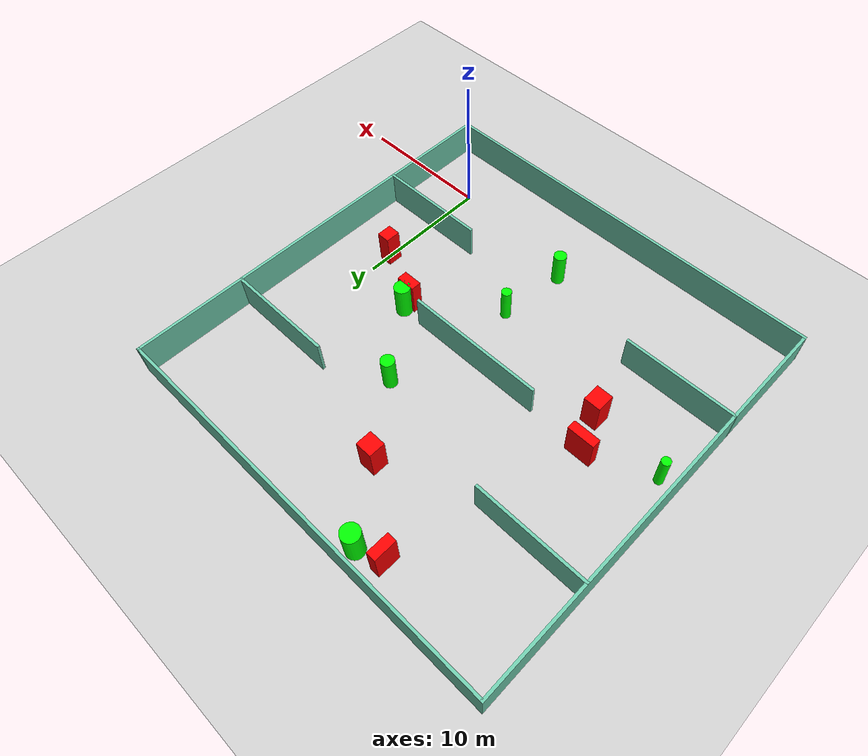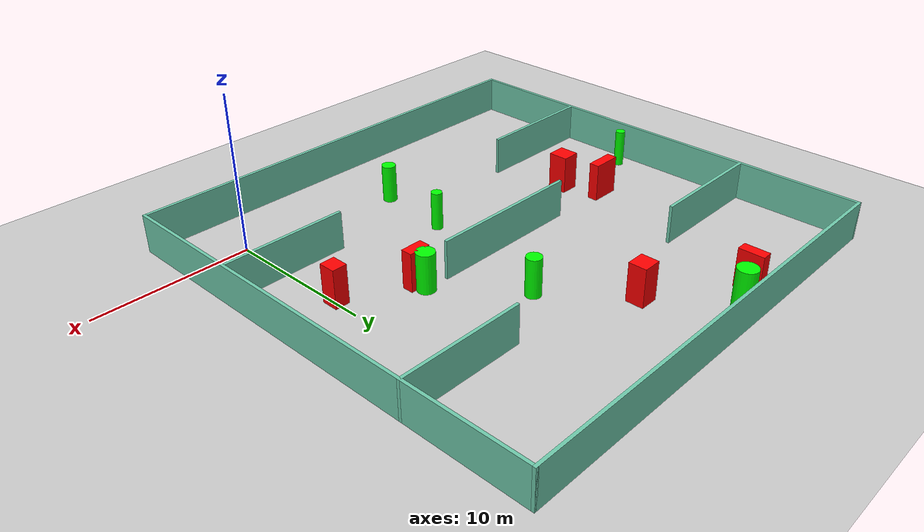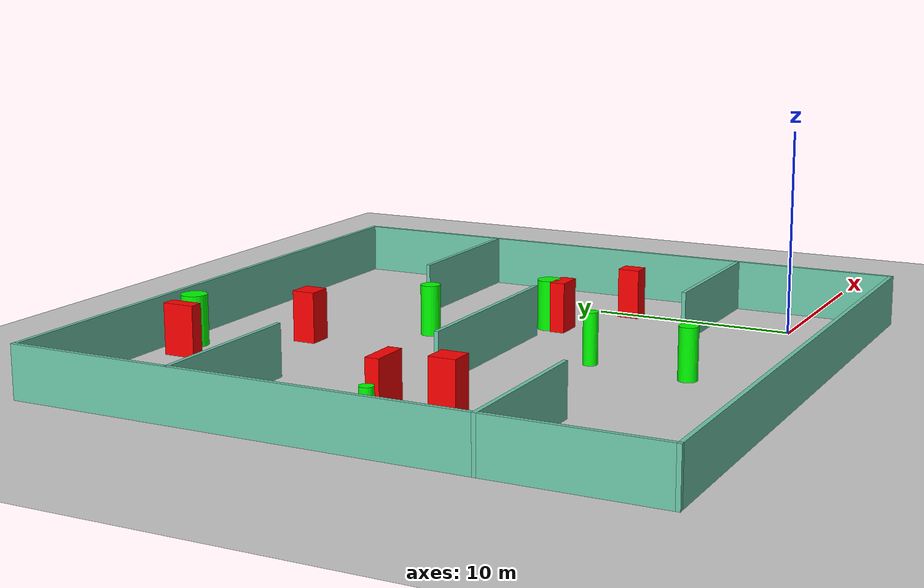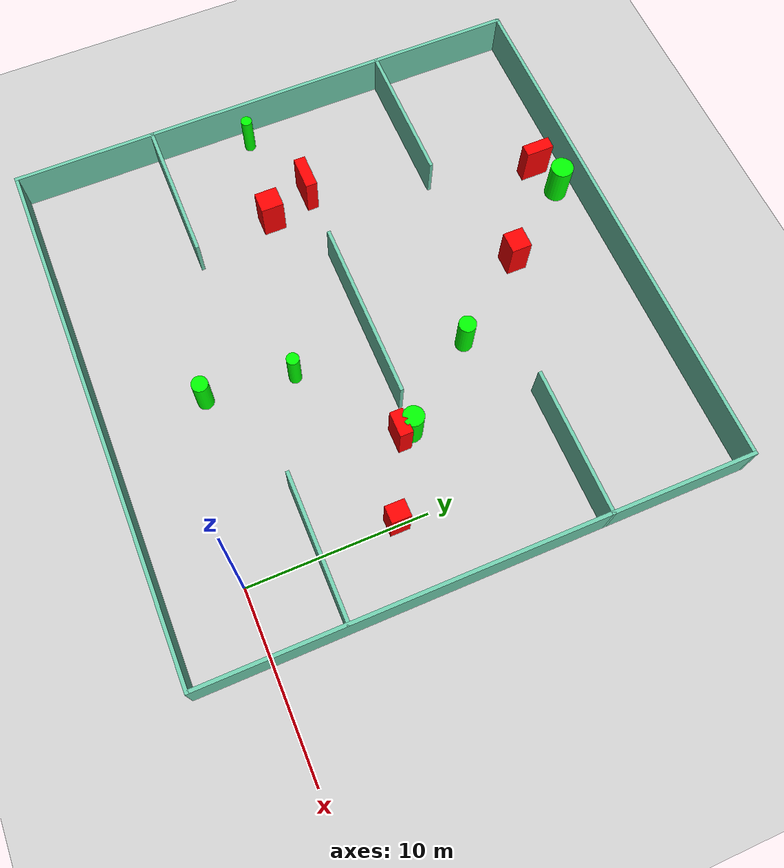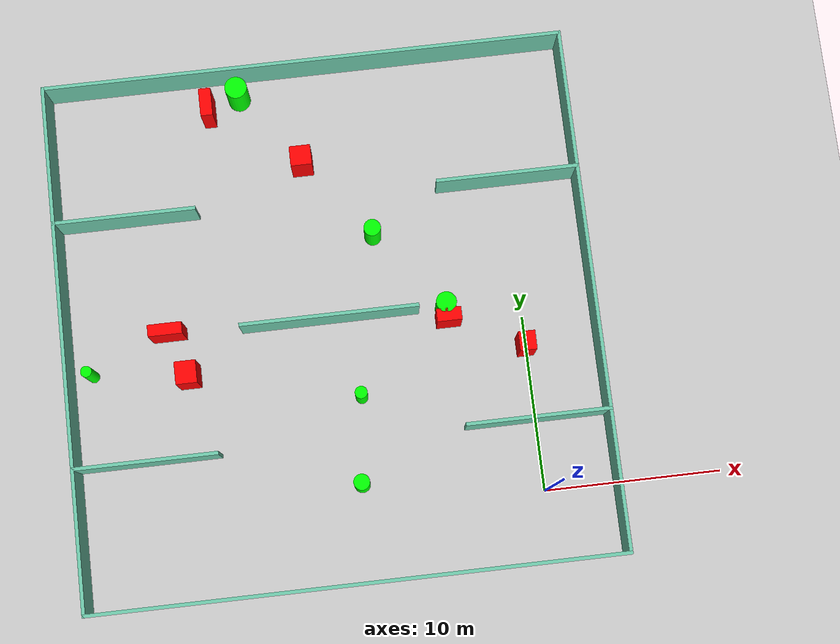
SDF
<sdf version="1.7">
 <world name="default">
  <light name="sun" type="directional">
   <pose>0 0 10 0 -0 0</pose>
   <diffuse>0.8 0.8 0.8 1</diffuse>
   <specular>0.2 0.2 0.2 1</specular>
   <attenuation>
    <range>1000</range>
    <constant>0.9</constant>
    <linear>0.01</linear>
    <quadratic>0.001</quadratic>
   </attenuation>
   <direction>-0.5 0.1 -0.9</direction>
   <spot><inner_angle>0</inner_angle><outer_angle>0</outer_angle><falloff>0</falloff></spot>
  </light>
  <model name="ground_plane">
   <static>1</static>
   <link name="link">
    <collision name="collision">
     <geometry><plane><normal>0 0 1</normal><size>100 100</size></plane></geometry>
     <surface>
      <contact><collide_bitmask>65535</collide_bitmask></contact>
      <friction><ode><mu>100</mu><mu2>50</mu2></ode></friction>
     </surface>
    </collision>
    <visual name="visual">
     <cast_shadows>0</cast_shadows>
     <geometry><plane><normal>0 0 1</normal><size>100 100</size></plane></geometry>
     <material>
      <script><uri>file://media/materials/scripts/gazebo.material</uri><name>Gazebo/Grey</name></script>
     </material>
    </visual>
   </link>
  </model>
  <gravity>0 0 -9.8</gravity>
  <magnetic_field>6e-06 2.3e-05 -4.2e-05</magnetic_field>
  <atmosphere type="adiabatic"/>
  <physics type="ode">
   <max_step_size>0.001</max_step_size>
   <real_time_factor>1</real_time_factor>
   <real_time_update_rate>1000</real_time_update_rate>
  </physics>
  <scene><ambient>0.4 0.4 0.4 1</ambient><background>0.7 0.7 0.7 1</background><shadows>1</shadows></scene>
  <spherical_coordinates>
   <surface_model>EARTH_WGS84</surface_model>
   <latitude_deg>0</latitude_deg>
   <longitude_deg>0</longitude_deg>
   <elevation>0</elevation>
   <heading_deg>0</heading_deg>
  </spherical_coordinates>
  <model name="my_base_walls">
   <link name="Wall_10">
    <collision name="Wall_10_Collision">
     <geometry><box><size>8.2 0.2 2.5</size></box></geometry>
     <pose>0 0 1.25 0 -0 0</pose>
    </collision>
    <visual name="Wall_10_Visual">
     <pose>0 0 1.25 0 -0 0</pose>
     <geometry><box><size>8.2 0.2 2.5</size></box></geometry>
     <material>
      <script><uri>file://media/materials/scripts/gazebo.material</uri><name>Gazebo/Grey</name></script>
      <ambient>0.435294 0.796078 0.67451 1</ambient>
     </material>
     <meta><layer>0</layer></meta>
    </visual>
    <pose>-11 -7 0 0 -0 0</pose>
   </link>
   <link name="Wall_12">
    <collision name="Wall_12_Collision">
     <geometry><box><size>8.2 0.2 2.5</size></box></geometry>
     <pose>0 0 1.25 0 -0 0</pose>
    </collision>
    <visual name="Wall_12_Visual">
     <pose>0 0 1.25 0 -0 0</pose>
     <geometry><box><size>8.2 0.2 2.5</size></box></geometry>
     <material>
      <script><uri>file://media/materials/scripts/gazebo.material</uri><name>Gazebo/Grey</name></script>
      <ambient>0.435294 0.796078 0.67451 1</ambient>
     </material>
     <meta><layer>0</layer></meta>
    </visual>
    <pose>-11 7 0 0 -0 0</pose>
   </link>
   <link name="Wall_14">
    <collision name="Wall_14_Collision">
     <geometry><box><size>8.2 0.2 2.5</size></box></geometry>
     <pose>0 0 1.25 0 -0 0</pose>
    </collision>
    <visual name="Wall_14_Visual">
     <pose>0 0 1.25 0 -0 0</pose>
     <geometry><box><size>8.2 0.2 2.5</size></box></geometry>
     <material>
      <script><uri>file://media/materials/scripts/gazebo.material</uri><name>Gazebo/Grey</name></script>
      <ambient>0.435294 0.796078 0.67451 1</ambient>
     </material>
     <meta><layer>0</layer></meta>
    </visual>
    <pose>11 7 0 0 -0 3.14159</pose>
   </link>
   <link name="Wall_16">
    <collision name="Wall_16_Collision">
     <geometry><box><size>10.2 0.2 2.5</size></box></geometry>
     <pose>0 0 1.25 0 -0 0</pose>
    </collision>
    <visual name="Wall_16_Visual">
     <pose>0 0 1.25 0 -0 0</pose>
     <geometry><box><size>10.2 0.2 2.5</size></box></geometry>
     <material>
      <script><uri>file://media/materials/scripts/gazebo.material</uri><name>Gazebo/Grey</name></script>
      <ambient>0.435294 0.796078 0.67451 1</ambient>
     </material>
     <meta><layer>0</layer></meta>
    </visual>
    <pose>0 0 0 0 -0 3.14159</pose>
   </link>
   <link name="Wall_2">
    <collision name="Wall_2_Collision">
     <geometry><box><size>30.2 0.2 2.5</size></box></geometry>
     <pose>0 0 1.25 0 -0 0</pose>
    </collision>
    <visual name="Wall_2_Visual">
     <pose>0 0 1.25 0 -0 0</pose>
     <geometry><box><size>30.2 0.2 2.5</size></box></geometry>
     <material>
      <script><uri>file://media/materials/scripts/gazebo.material</uri><name>Gazebo/Grey</name></script>
      <ambient>0.435294 0.796078 0.67451 1</ambient>
     </material>
     <meta><layer>0</layer></meta>
    </visual>
    <pose>0 -15 0 0 -0 3.14159</pose>
   </link>
   <link name="Wall_3">
    <collision name="Wall_3_Collision">
     <geometry><box><size>30.2 0.2 2.5</size></box></geometry>
     <pose>0 0 1.25 0 -0 0</pose>
    </collision>
    <visual name="Wall_3_Visual">
     <pose>0 0 1.25 0 -0 0</pose>
     <geometry><box><size>30.2 0.2 2.5</size></box></geometry>
     <material>
      <script><uri>file://media/materials/scripts/gazebo.material</uri><name>Gazebo/Grey</name></script>
      <ambient>0.435294 0.796078 0.67451 1</ambient>
     </material>
     <meta><layer>0</layer></meta>
    </visual>
    <pose>-15 0 0 0 -0 1.5708</pose>
   </link>
   <link name="Wall_4">
    <collision name="Wall_4_Collision">
     <geometry><box><size>30.2 0.2 2.5</size></box></geometry>
     <pose>0 0 1.25 0 -0 0</pose>
    </collision>
    <visual name="Wall_4_Visual">
     <pose>0 0 1.25 0 -0 0</pose>
     <geometry><box><size>30.2 0.2 2.5</size></box></geometry>
     <material>
      <script><uri>file://media/materials/scripts/gazebo.material</uri><name>Gazebo/Grey</name></script>
      <ambient>0.435294 0.796078 0.67451 1</ambient>
     </material>
     <meta><layer>0</layer></meta>
    </visual>
    <pose>0 15 0 0 -0 0</pose>
   </link>
   <link name="Wall_6">
    <collision name="Wall_6_Collision">
     <geometry><box><size>30.2 0.2 2.5</size></box></geometry>
     <pose>0 0 1.25 0 -0 0</pose>
    </collision>
    <visual name="Wall_6_Visual">
     <pose>0 0 1.25 0 -0 0</pose>
     <geometry><box><size>30.2 0.2 2.5</size></box></geometry>
     <material>
      <script><uri>file://media/materials/scripts/gazebo.material</uri><name>Gazebo/Grey</name></script>
      <ambient>0.435294 0.796078 0.67451 1</ambient>
     </material>
     <meta><layer>0</layer></meta>
    </visual>
    <pose>15 0 0 0 -0 1.5708</pose>
   </link>
   <link name="Wall_8">
    <collision name="Wall_8_Collision">
     <geometry><box><size>8.2 0.2 2.5</size></box></geometry>
     <pose>0 0 1.25 0 -0 0</pose>
    </collision>
    <visual name="Wall_8_Visual">
     <pose>0 0 1.25 0 -0 0</pose>
     <geometry><box><size>8.2 0.2 2.5</size></box></geometry>
     <material>
      <script><uri>file://media/materials/scripts/gazebo.material</uri><name>Gazebo/Grey</name></script>
      <ambient>0.435294 0.796078 0.67451 1</ambient>
     </material>
     <meta><layer>0</layer></meta>
    </visual>
    <pose>11 -7 0 0 -0 3.14159</pose>
   </link>
   <static>1</static>
   <pose>-11 11 0 0 -0 0</pose>
  </model>
  <model name="cylinder1">
   <static>1</static>
   <link name="link">
    <inertial>
     <mass>1</mass>
     <inertia><ixx>0.5</ixx><ixy>0</ixy><ixz>0</ixz><iyy>0.5</iyy><iyz>0</iyz><izz>1</izz></inertia>
    </inertial>
    <collision name="collision">
     <geometry><cylinder><radius>0.3555381365246415</radius><length>2.5</length></cylinder></geometry>
    </collision>
    <visual name="visual">
     <geometry><cylinder><radius>0.3555381365246415</radius><length>2.5</length></cylinder></geometry>
     <material>
      <ambient>0 1 0 1</ambient>
      <diffuse>0 1 0 1</diffuse>
      <specular>0.1 0.1 0.1 1</specular>
      <emissive>0 0 0 0</emissive>
     </material>
    </visual>
   </link>
   <pose>-9.690736843384457 6.432232196609323 1.25 0 0 0</pose>
  </model>
  <model name="cylinder2">
   <static>1</static>
   <link name="link">
    <inertial>
     <mass>1</mass>
     <inertia><ixx>0.5</ixx><ixy>0</ixy><ixz>0</ixz><iyy>0.5</iyy><iyz>0</iyz><izz>1</izz></inertia>
    </inertial>
    <collision name="collision">
     <geometry><cylinder><radius>0.3173081936432292</radius><length>2.5</length></cylinder></geometry>
    </collision>
    <visual name="visual">
     <geometry><cylinder><radius>0.3173081936432292</radius><length>2.5</length></cylinder></geometry>
     <material>
      <ambient>0 1 0 1</ambient>
      <diffuse>0 1 0 1</diffuse>
      <specular>0.1 0.1 0.1 1</specular>
      <emissive>0 0 0 0</emissive>
     </material>
    </visual>
   </link>
   <pose>-24.80206952531337 9.332960698261576 1.25 0 0 0</pose>
  </model>
  <model name="cylinder3">
   <static>1</static>
   <link name="link">
    <inertial>
     <mass>1</mass>
     <inertia><ixx>0.5</ixx><ixy>0</ixy><ixz>0</ixz><iyy>0.5</iyy><iyz>0</iyz><izz>1</izz></inertia>
    </inertial>
    <collision name="collision">
     <geometry><cylinder><radius>0.5800768009993102</radius><length>2.5</length></cylinder></geometry>
    </collision>
    <visual name="visual">
     <geometry><cylinder><radius>0.5800768009993102</radius><length>2.5</length></cylinder></geometry>
     <material>
      <ambient>0 1 0 1</ambient>
      <diffuse>0 1 0 1</diffuse>
      <specular>0.1 0.1 0.1 1</specular>
      <emissive>0 0 0 0</emissive>
     </material>
    </visual>
   </link>
   <pose>-4.362568544359757 10.982061145034699 1.25 0 0 0</pose>
  </model>
  <model name="cylinder4">
   <static>1</static>
   <link name="link">
    <inertial>
     <mass>1</mass>
     <inertia><ixx>0.5</ixx><ixy>0</ixy><ixz>0</ixz><iyy>0.5</iyy><iyz>0</iyz><izz>1</izz></inertia>
    </inertial>
    <collision name="collision">
     <geometry><cylinder><radius>0.45680681572531606</radius><length>2.5</length></cylinder></geometry>
    </collision>
    <visual name="visual">
     <geometry><cylinder><radius>0.45680681572531606</radius><length>2.5</length></cylinder></geometry>
     <material>
      <ambient>0 1 0 1</ambient>
      <diffuse>0 1 0 1</diffuse>
      <specular>0.1 0.1 0.1 1</specular>
      <emissive>0 0 0 0</emissive>
     </material>
    </visual>
   </link>
   <pose>-10.201886964034335 1.4929812453451614 1.25 0 0 0</pose>
  </model>
  <model name="cylinder5">
   <static>1</static>
   <link name="link">
    <inertial>
     <mass>1</mass>
     <inertia><ixx>0.5</ixx><ixy>0</ixy><ixz>0</ixz><iyy>0.5</iyy><iyz>0</iyz><izz>1</izz></inertia>
    </inertial>
    <collision name="collision">
     <geometry><cylinder><radius>0.48811070858476957</radius><length>2.5</length></cylinder></geometry>
    </collision>
    <visual name="visual">
     <geometry><cylinder><radius>0.48811070858476957</radius><length>2.5</length></cylinder></geometry>
     <material>
      <ambient>0 1 0 1</ambient>
      <diffuse>0 1 0 1</diffuse>
      <specular>0.1 0.1 0.1 1</specular>
      <emissive>0 0 0 0</emissive>
     </material>
    </visual>
   </link>
   <pose>-8.029680021563845 15.69998166752233 1.25 0 0 0</pose>
  </model>
  <model name="cylinder6">
   <static>1</static>
   <link name="link">
    <inertial>
     <mass>1</mass>
     <inertia><ixx>0.5</ixx><ixy>0</ixy><ixz>0</ixz><iyy>0.5</iyy><iyz>0</iyz><izz>1</izz></inertia>
    </inertial>
    <collision name="collision">
     <geometry><cylinder><radius>0.6400165838538128</radius><length>2.5</length></cylinder></geometry>
    </collision>
    <visual name="visual">
     <geometry><cylinder><radius>0.6400165838538128</radius><length>2.5</length></cylinder></geometry>
     <material>
      <ambient>0 1 0 1</ambient>
      <diffuse>0 1 0 1</diffuse>
      <specular>0.1 0.1 0.1 1</specular>
      <emissive>0 0 0 0</emissive>
     </material>
    </visual>
   </link>
   <pose>-14.930578031245176 24.80671538823661 1.25 0 0 0</pose>
  </model>
  <model name="box1">
   <static>1</static>
   <link name="link">
    <inertial>
     <mass>1</mass>
     <inertia><ixx>0.083</ixx><ixy>0</ixy><ixz>0</ixz><iyy>0.083</iyy><iyz>0</iyz><izz>0.083</izz></inertia>
    </inertial>
    <collision name="collision">
     <geometry><box><size>0.694528398139191 1.6091037326115085 2.5</size></box></geometry>
    </collision>
    <visual name="visual">
     <geometry><box><size>0.694528398139191 1.6091037326115085 2.5</size></box></geometry>
     <material>
      <ambient>1 0 0 1</ambient>
      <diffuse>1 0 0 1</diffuse>
      <specular>0.1 0.1 0.1 1</specular>
      <emissive>0 0 0 0</emissive>
     </material>
    </visual>
    <sensor name="my_contact" type="contact">
     <contact><collision>box_collision</collision><topic>__default_topic__</topic></contact>
    </sensor>
   </link>
   <pose>-16.74189202910792 24.162513758855674 1.25 0 0 0</pose>
  </model>
  <model name="box2">
   <static>1</static>
   <link name="link">
    <inertial>
     <mass>1</mass>
     <inertia><ixx>0.083</ixx><ixy>0</ixy><ixz>0</ixz><iyy>0.083</iyy><iyz>0</iyz><izz>0.083</izz></inertia>
    </inertial>
    <collision name="collision">
     <geometry><box><size>0.9548915126513287 1.0814453735231544 2.5</size></box></geometry>
    </collision>
    <visual name="visual">
     <geometry><box><size>0.9548915126513287 1.0814453735231544 2.5</size></box></geometry>
     <material>
      <ambient>1 0 0 1</ambient>
      <diffuse>1 0 0 1</diffuse>
      <specular>0.1 0.1 0.1 1</specular>
      <emissive>0 0 0 0</emissive>
     </material>
    </visual>
    <sensor name="my_contact" type="contact">
     <contact><collision>box_collision</collision><topic>__default_topic__</topic></contact>
    </sensor>
   </link>
   <pose>-0.10439442715863478 8.285876784931451 1.25 0 0 0</pose>
  </model>
  <model name="box3">
   <static>1</static>
   <link name="link">
    <inertial>
     <mass>1</mass>
     <inertia><ixx>0.083</ixx><ixy>0</ixy><ixz>0</ixz><iyy>0.083</iyy><iyz>0</iyz><izz>0.083</izz></inertia>
    </inertial>
    <collision name="collision">
     <geometry><box><size>1.2165939329756394 1.152124470330242 2.5</size></box></geometry>
    </collision>
    <visual name="visual">
     <geometry><box><size>1.2165939329756394 1.152124470330242 2.5</size></box></geometry>
     <material>
      <ambient>1 0 0 1</ambient>
      <diffuse>1 0 0 1</diffuse>
      <specular>0.1 0.1 0.1 1</specular>
      <emissive>0 0 0 0</emissive>
     </material>
    </visual>
    <sensor name="my_contact" type="contact">
     <contact><collision>box_collision</collision><topic>__default_topic__</topic></contact>
    </sensor>
   </link>
   <pose>-11.643264869054725 20.38182300932738 1.25 0 0 0</pose>
  </model>
  <model name="box4">
   <static>1</static>
   <link name="link">
    <inertial>
     <mass>1</mass>
     <inertia><ixx>0.083</ixx><ixy>0</ixy><ixz>0</ixz><iyy>0.083</iyy><iyz>0</iyz><izz>0.083</izz></inertia>
    </inertial>
    <collision name="collision">
     <geometry><box><size>1.932492084230598 0.66488146213952 2.5</size></box></geometry>
    </collision>
    <visual name="visual">
     <geometry><box><size>1.932492084230598 0.66488146213952 2.5</size></box></geometry>
     <material>
      <ambient>1 0 0 1</ambient>
      <diffuse>1 0 0 1</diffuse>
      <specular>0.1 0.1 0.1 1</specular>
      <emissive>0 0 0 0</emissive>
     </material>
    </visual>
    <sensor name="my_contact" type="contact">
     <contact><collision>box_collision</collision><topic>__default_topic__</topic></contact>
    </sensor>
   </link>
   <pose>-20.244073214125816 11.233953121119413 1.25 0 0 0</pose>
  </model>
  <model name="box5">
   <static>1</static>
   <link name="link">
    <inertial>
     <mass>1</mass>
     <inertia><ixx>0.083</ixx><ixy>0</ixy><ixz>0</ixz><iyy>0.083</iyy><iyz>0</iyz><izz>0.083</izz></inertia>
    </inertial>
    <collision name="collision">
     <geometry><box><size>1.4132581147937187 0.7401808025381638 2.5</size></box></geometry>
    </collision>
    <visual name="visual">
     <geometry><box><size>1.4132581147937187 0.7401808025381638 2.5</size></box></geometry>
     <material>
      <ambient>1 0 0 1</ambient>
      <diffuse>1 0 0 1</diffuse>
      <specular>0.1 0.1 0.1 1</specular>
      <emissive>0 0 0 0</emissive>
     </material>
    </visual>
    <sensor name="my_contact" type="contact">
     <contact><collision>box_collision</collision><topic>__default_topic__</topic></contact>
    </sensor>
   </link>
   <pose>-4.289083149046828 10.270286357953127 1.25 0 0 0</pose>
  </model>
  <model name="box6">
   <static>1</static>
   <link name="link">
    <inertial>
     <mass>1</mass>
     <inertia><ixx>0.083</ixx><ixy>0</ixy><ixz>0</ixz><iyy>0.083</iyy><iyz>0</iyz><izz>0.083</izz></inertia>
    </inertial>
    <collision name="collision">
     <geometry><box><size>1.2084834952561607 1.2857571899428182 2.5</size></box></geometry>
    </collision>
    <visual name="visual">
     <geometry><box><size>1.2084834952561607 1.2857571899428182 2.5</size></box></geometry>
     <material>
      <ambient>1 0 0 1</ambient>
      <diffuse>1 0 0 1</diffuse>
      <specular>0.1 0.1 0.1 1</specular>
      <emissive>0 0 0 0</emissive>
     </material>
    </visual>
    <sensor name="my_contact" type="contact">
     <contact><collision>box_collision</collision><topic>__default_topic__</topic></contact>
    </sensor>
   </link>
   <pose>-19.301005432919517 8.681665985088703 1.25 0 0 0</pose>
  </model>
 </world>
</sdf>
